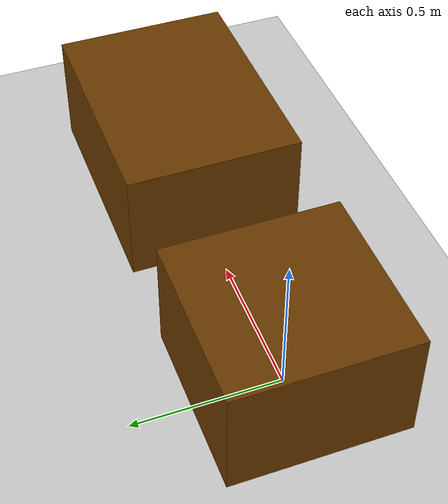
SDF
<?xml version="1.0" ?>
<sdf version="1.5">
    <world name="default">

        <physics type="ode">
        <max_step_size>0.001</max_step_size>
        <real_time_factor>1</real_time_factor>
        <real_time_update_rate>1000</real_time_update_rate>
        <gravity>0 0 -9.8</gravity>
            <ode>
                <solver>
                <type>quick</type>
                <iters>50</iters>
                <sor>1.3</sor>
                </solver>
                <constraints>
                <cfm>0.0</cfm>
                <erp>0.2</erp>
                <contact_max_correcting_vel>10.0</contact_max_correcting_vel>
                <contact_surface_layer>0.001</contact_surface_layer>
                </constraints>
            </ode>
        </physics>

        <scene>
        <sky>
            <clouds>
                <speed>12</speed>
            </clouds>
        </sky>
        </scene>
        <!-- A global light source -->
        <include>
            <uri>model://sun</uri>
        </include>
        <!-- A ground plane -->
        <include>
            <uri>model://ground_plane</uri>
        </include>
        <!-- environment blocks, obstacles or stairs -->
        <model name="static_environment">
        <static>true</static>
            <link name="static_box">
                <pose>0 0 0.2 0 0 0</pose>
                <collision name="static_box_collision">
                    <geometry>
                        <box>
                            <size>0.6 0.6 0.4</size>
                        </box>
                    </geometry>
                </collision>
                <visual name="static_box_visual">
                    <geometry>
                        <box>
                            <size>0.6 0.6 0.4</size>
                        </box>
                    </geometry>
                    <material>
                        <ambient>0.2 0.2 0.2 1.0</ambient>
                        <diffuse>.421 0.225 0.0 1.0</diffuse>
                    </material>
                </visual>
            </link>

            <link name="static_box">
                <pose>1 0 0.2 0 0 0</pose>
                <collision name="static_box_collision">
                    <geometry>
                        <box>
                            <size>0.8 0.6 0.4</size>
                        </box>
                    </geometry>
                </collision>
                <visual name="static_box_visual">
                    <geometry>
                        <box>
                            <size>0.8 0.6 0.4</size>
                        </box>
                    </geometry>
                    <material>
                        <ambient>0.2 0.2 0.2 1.0</ambient>
                        <diffuse>.421 0.225 0.0 1.0</diffuse>
                    </material>
                </visual>
            </link>

        </model>

    </world>
</sdf>
